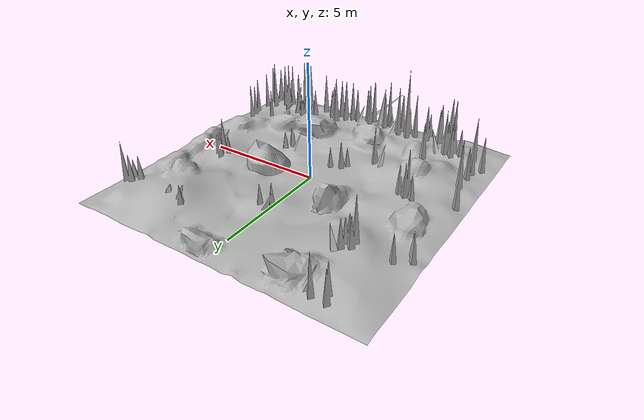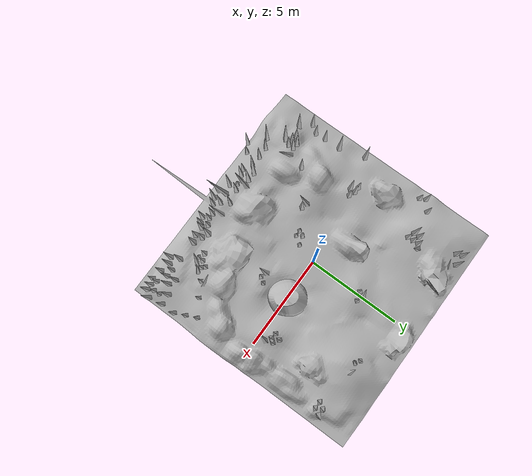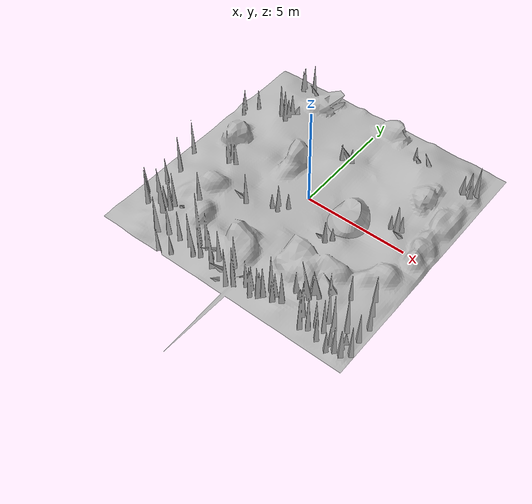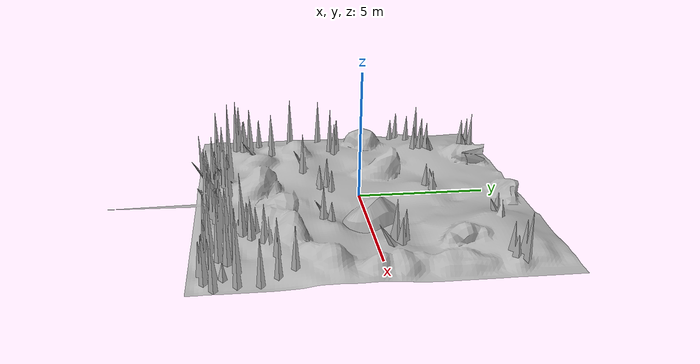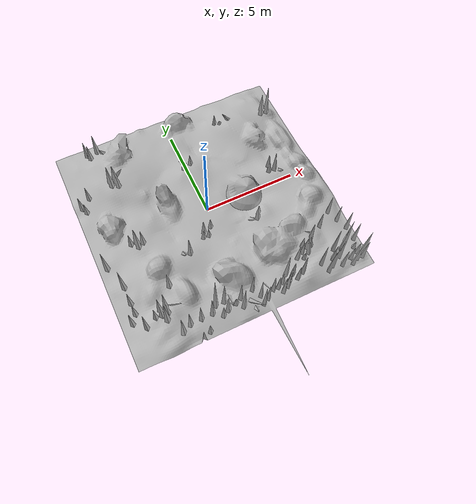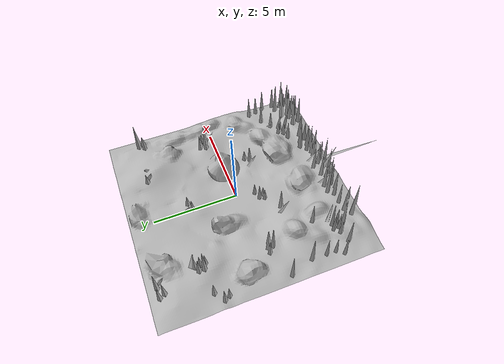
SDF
<sdf version='1.6'>
  <world name='default'>
    <include>
      <uri>model://sun</uri>
    </include>

    <include>
      <name>cave</name>
      <uri>cave</uri>
      <pose>0 0 0 0 0 0</pose>
    </include>

    <gui fullscreen='0'>
      <camera name='user_camera'>
        <pose frame=''>9.0 -12.0 6.0 0.0 0.3 2.2</pose>
        <view_controller>orbit</view_controller>
        <projection_type>perspective</projection_type>
      </camera>
    </gui>

  </world>
</sdf>

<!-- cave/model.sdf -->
<sdf version="1.5">
  <model name="cave">
    <pose>0 0 0 0 0 0</pose>
    <static>true</static>
    <link name="body">
      <visual name="visual">
        <geometry>
          <mesh><uri>model://cave/media/cave.dae</uri></mesh>
        </geometry>
      </visual>
      <collision name="collision">
        <geometry>
          <mesh><uri>model://cave/media/cave.dae</uri></mesh>
        </geometry>
      </collision>
    </link>
  </model>
</sdf>
